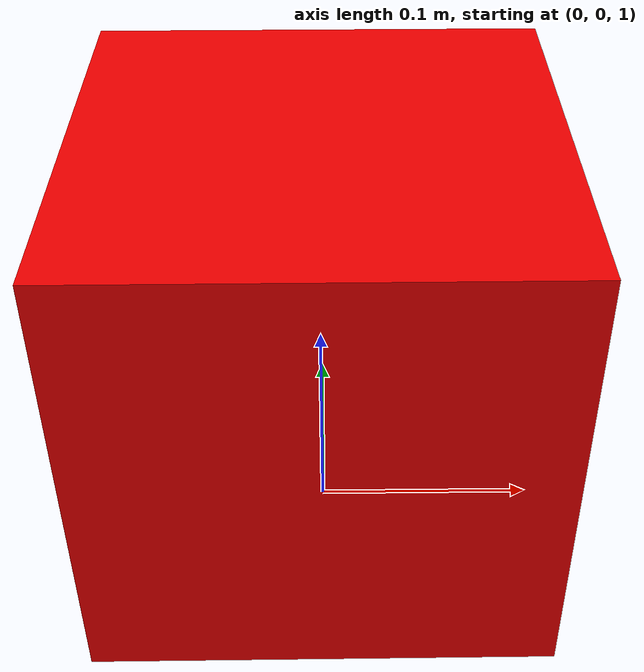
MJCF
<mujoco model="Stiffness Test 6DOF">

    <default>
        <geom density="1" solimp="0.9 0.95 0.001"/>

    </default>
    <compiler coordinate="local" inertiafromgeom="true"/>
    <option timestep="0.01"/>
    <option gravity="0 0 0"/>

    <worldbody>
        <!-- floor -->
        <geom type="plane" size="1 1 0.1" rgba="0.8 0.8 0.8 1"/>

        <!-- box with joints with different stiffness (6-DOF) -->
        <body name="body1">
            <geom type="box" pos="0 0 1.1" size="0.1 0.1 0.1" rgba="1 0 0 1"/>
            <joint name="pos_x" type="slide" pos="0 0 1.1" axis="1 0 0" stiffness="1" damping="1"/>
            <joint name="pos_y" type="slide" pos="0 0 1.1" axis="0 1 0" stiffness="5" damping="1"/>
            <joint name="pos_z" type="slide" pos="0 0 1.1" axis="0 0 1" stiffness="10" damping="1"/>
            <joint name="rot_x" type="hinge" pos="0 0 1.1" axis="1 0 0" stiffness="1.27324" damping="1"/>
            <joint name="rot_y" type="hinge" pos="0 0 1.1" axis="0 1 0" stiffness="0.63662" damping="1"/>
            <joint name="rot_z" type="hinge" pos="0 0 1.1" axis="0 0 1" stiffness="0.31831" damping="1"/>
        </body>
        <!-- body only for showing middle point with coordinate system -->
        <body name="coordinate system">
        </body>
    </worldbody>

    <!-- actuators for each joint -->
    <actuator>
        <motor name="pos_x" joint="pos_x" ctrlrange="-1 1" forcerange="-1 1"/>
        <motor name="pos_y" joint="pos_y" ctrlrange="-1 1" forcerange="-1 1"/>
        <motor name="pos_z" joint="pos_z" ctrlrange="-1 0" forcerange="-1 1"/>

        <motor name="rot_x" joint="rot_x" ctrlrange="-1 1" forcerange="-1 1"/>
        <motor name="rot_y" joint="rot_y" ctrlrange="-1 1" forcerange="-1 1"/>
        <motor name="rot_z" joint="rot_z" ctrlrange="-1 1" forcerange="-1 1"/>
    </actuator>

    <!-- position sensors for each actuator -->
    <sensor>
        <jointpos name="sensor_pos_x" joint="pos_x"/>
        <jointpos name="sensor_pos_y" joint="pos_y"/>
        <jointpos name="sensor_pos_z" joint="pos_z"/>
        <jointpos name="sensor_rot_x" joint="rot_x"/>
        <jointpos name="sensor_rot_y" joint="rot_y"/>
        <jointpos name="sensor_rot_z" joint="rot_z"/>
    </sensor>
</mujoco>
